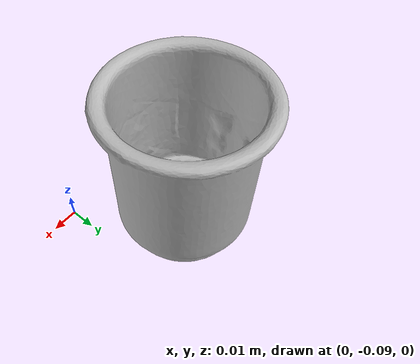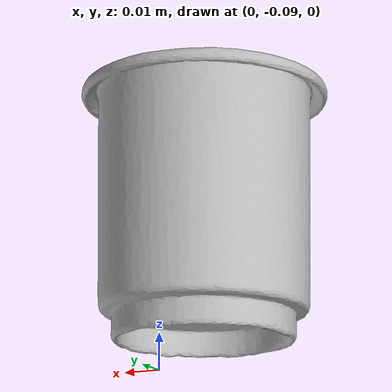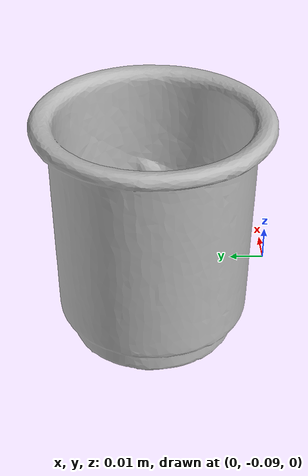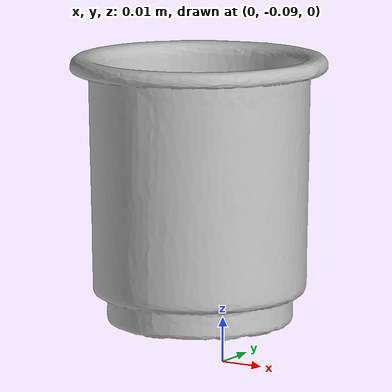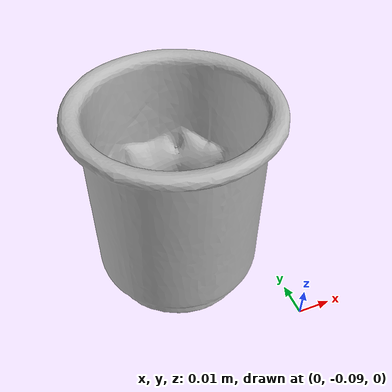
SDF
<?xml version='1.0'?>
<sdf version="1.4">
  <model name="b_cups">
    <static>false</static>
    <link name="link">
      <inertial>
        <pose>-0.026747550267515283 -0.05365431597117833 0.029941420033130467 0.2732633689185951 0.01277311734880885 -0.2603993828495811</pose>
        <mass>2.438635258780366e-05</mass>
        <inertia>
          <ixx>1.561792185463677e-08</ixx>
          <ixy>1.128936294740988e-25</ixy>
          <ixz>4.869941140668529e-25</ixz>
          <iyy>1.5287407239601855e-08</iyy>
          <iyz>2.923804836206826e-24</iyz>
          <izz>1.3505737033184346e-08</izz>
        </inertia>
      </inertial>
      <collision name="collision">
        <geometry>
          <mesh>
            <!-- Use a downsampled mesh for collisions -->
            <uri>model://065-b_cups/google_16k/065-b_cups.obj</uri>
            </mesh>
        </geometry>
        <surface>
          <friction>
            <ode>
              <mu>0.9</mu>
              <mu2>0.9</mu2>
            </ode>
          </friction>
          <contact>
            <ode>
              <kp>1000000000000.0</kp>
              <kd>1</kd>
              <min_depth>0.0001</min_depth>
              <max_vel>0.01</max_vel>
            </ode>
          </contact>
          <bounce>
            <restitution_coefficient>0.1</restitution_coefficient>
            <threshold>1000.0</threshold>
          </bounce>
        </surface>
      </collision>
      <visual name="visual">
        <geometry>
          <mesh>
            <uri>model://065-b_cups/google_16k/065-b_cups.dae</uri>
            </mesh>
        </geometry>
      </visual>
    </link>
  </model>
</sdf>
